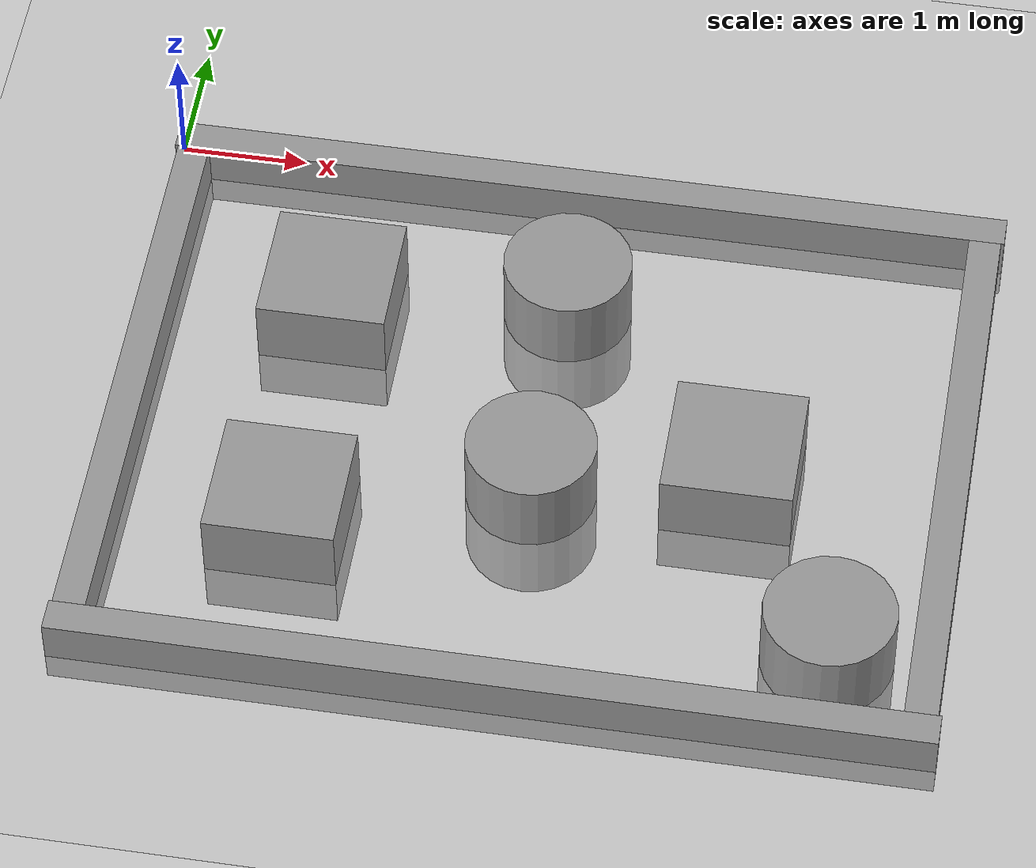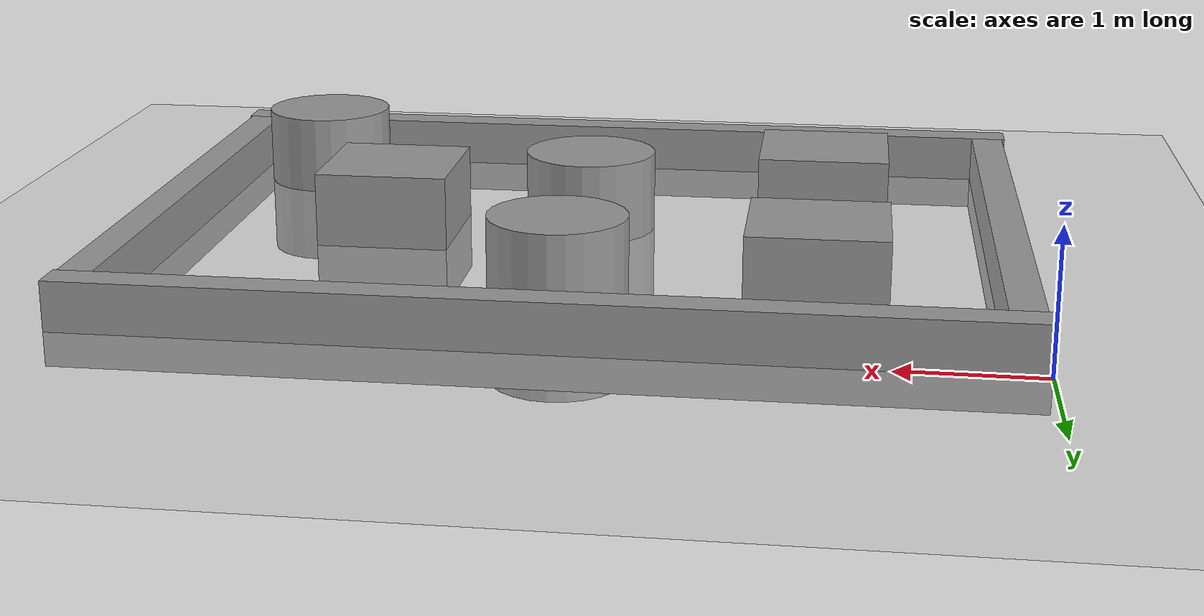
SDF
<sdf version='1.6'>
  <world name='default'>
    <light name='sun' type='directional'>
      <cast_shadows>1</cast_shadows>
      <pose frame=''>0 0 10 0 -0 0</pose>
      <diffuse>0.8 0.8 0.8 1</diffuse>
      <specular>0.2 0.2 0.2 1</specular>
      <attenuation>
        <range>1000</range>
        <constant>0.9</constant>
        <linear>0.01</linear>
        <quadratic>0.001</quadratic>
      </attenuation>
      <direction>-0.5 0.1 -0.9</direction>
    </light>
    <model name='ground_plane'>
      <static>1</static>
      <link name='link'>
        <collision name='collision'>
          <geometry>
            <plane>
              <normal>0 0 1</normal>
              <size>100 100</size>
            </plane>
          </geometry>
          <surface>
            <contact>
              <collide_bitmask>65535</collide_bitmask>
              <ode/>
            </contact>
            <friction>
              <ode>
                <mu>100</mu>
                <mu2>50</mu2>
              </ode>
              <torsional>
                <ode/>
              </torsional>
            </friction>
            <bounce/>
          </surface>
          <max_contacts>10</max_contacts>
        </collision>
        <visual name='visual'>
          <cast_shadows>0</cast_shadows>
          <geometry>
            <plane>
              <normal>0 0 1</normal>
              <size>100 100</size>
            </plane>
          </geometry>
          <material>
            <script>
              <uri>file://media/materials/scripts/gazebo.material</uri>
              <name>Gazebo/Grey</name>
            </script>
          </material>
        </visual>
        <self_collide>0</self_collide>
        <enable_wind>0</enable_wind>
        <kinematic>0</kinematic>
      </link>
    </model>
    <gravity>0 0 -9.8</gravity>
    <magnetic_field>6e-06 2.3e-05 -4.2e-05</magnetic_field>
    <atmosphere type='adiabatic'/>
    <physics name='default_physics' default='0' type='ode'>
      <max_step_size>0.001</max_step_size>
      <real_time_factor>1</real_time_factor>
      <real_time_update_rate>1000</real_time_update_rate>
    </physics>
    <scene>
      <ambient>0.4 0.4 0.4 1</ambient>
      <background>0.7 0.7 0.7 1</background>
      <shadows>1</shadows>
    </scene>
    <audio>
      <device>default</device>
    </audio>
    <wind/>
    <spherical_coordinates>
      <surface_model>EARTH_WGS84</surface_model>
      <latitude_deg>0</latitude_deg>
      <longitude_deg>0</longitude_deg>
      <elevation>0</elevation>
      <heading_deg>0</heading_deg>
    </spherical_coordinates>

    <model name='unit_box_X+'>
      <static>1</static>
      <pose frame=''>3.30 -4.95 0.05 0 -0 0</pose>
      <link name='link'>
        <inertial>
          <mass>1</mass>
          <inertia>
            <ixx>0.166667</ixx>
            <ixy>0</ixy>
            <ixz>0</ixz>
            <iyy>0.166667</iyy>
            <iyz>0</iyz>
            <izz>0.166667</izz>
          </inertia>
        </inertial>
        <collision name='collision'>
          <geometry>
            <box>
              <size>6.6 0.25 0.6</size>
            </box>
          </geometry>
          <max_contacts>10</max_contacts>
          <surface>
            <contact>
              <ode/>
            </contact>
            <bounce/>
            <friction>
              <torsional>
                <ode/>
              </torsional>
              <ode/>
            </friction>
          </surface>
        </collision>
        <visual name='visual'>
          <geometry>
            <box>
              <size>6.6 0.25 0.6</size>
            </box>
          </geometry>
          <material>
            <script>
              <name>Gazebo/Grey</name>
              <uri>file://media/materials/scripts/gazebo.material</uri>
            </script>
          </material>
        </visual>
        <self_collide>0</self_collide>
        <enable_wind>0</enable_wind>
        <kinematic>0</kinematic>
      </link>
    </model>
    <model name='unit_box_X-'>
      <static>1</static>
      <pose frame=''>3.30 -0.15 0.05 0 -0 0</pose>
      <link name='link'>
        <inertial>
          <mass>1</mass>
          <inertia>
            <ixx>0.166667</ixx>
            <ixy>0</ixy>
            <ixz>0</ixz>
            <iyy>0.166667</iyy>
            <iyz>0</iyz>
            <izz>0.166667</izz>
          </inertia>
        </inertial>
        <collision name='collision'>
          <geometry>
            <box>
              <size>6.6 0.25 0.6</size>
            </box>
          </geometry>
          <max_contacts>10</max_contacts>
          <surface>
            <contact>
              <ode/>
            </contact>
            <bounce/>
            <friction>
              <torsional>
                <ode/>
              </torsional>
              <ode/>
            </friction>
          </surface>
        </collision>
        <visual name='visual'>
          <geometry>
            <box>
              <size>6.6 0.25 0.6</size>
            </box>
          </geometry>
          <material>
            <script>
              <name>Gazebo/Grey</name>
              <uri>file://media/materials/scripts/gazebo.material</uri>
            </script>
          </material>
        </visual>
        <self_collide>0</self_collide>
        <enable_wind>0</enable_wind>
        <kinematic>0</kinematic>
      </link>
    </model>
    <model name='unit_box_Y+'>
      <static>1</static>
      <pose frame=''>6.45 -2.55 0.05 0 -0 0</pose>
      <link name='link'>
        <inertial>
          <mass>1</mass>
          <inertia>
            <ixx>0.166667</ixx>
            <ixy>0</ixy>
            <ixz>0</ixz>
            <iyy>0.166667</iyy>
            <iyz>0</iyz>
            <izz>0.166667</izz>
          </inertia>
        </inertial>
        <collision name='collision'>
          <geometry>
            <box>
              <size>0.25 4.55 0.6</size>
            </box>
          </geometry>
          <max_contacts>10</max_contacts>
          <surface>
            <contact>
              <ode/>
            </contact>
            <bounce/>
            <friction>
              <torsional>
                <ode/>
              </torsional>
              <ode/>
            </friction>
          </surface>
        </collision>
        <visual name='visual'>
          <geometry>
            <box>
              <size>0.25 4.55 0.6</size>
            </box>
          </geometry>
          <material>
            <script>
              <name>Gazebo/Grey</name>
              <uri>file://media/materials/scripts/gazebo.material</uri>
            </script>
          </material>
        </visual>
        <self_collide>0</self_collide>
        <enable_wind>0</enable_wind>
        <kinematic>0</kinematic>
      </link>
    </model>
    <model name='unit_box_Y-'>
      <static>1</static>
      <pose frame=''>0.15 -2.55 0.05 0 -0 0</pose>
      <link name='link'>
        <inertial>
          <mass>1</mass>
          <inertia>
            <ixx>0.166667</ixx>
            <ixy>0</ixy>
            <ixz>0</ixz>
            <iyy>0.166667</iyy>
            <iyz>0</iyz>
            <izz>0.166667</izz>
          </inertia>
        </inertial>
        <collision name='collision'>
          <geometry>
            <box>
              <size>0.25 4.55 0.6</size>
            </box>
          </geometry>
          <max_contacts>10</max_contacts>
          <surface>
            <contact>
              <ode/>
            </contact>
            <bounce/>
            <friction>
              <torsional>
                <ode/>
              </torsional>
              <ode/>
            </friction>
          </surface>
        </collision>
        <visual name='visual'>
          <geometry>
            <box>
              <size>0.25 4.55 0.6</size>
            </box>
          </geometry>
          <material>
            <script>
              <name>Gazebo/Grey</name>
              <uri>file://media/materials/scripts/gazebo.material</uri>
            </script>
          </material>
        </visual>
        <self_collide>0</self_collide>
        <enable_wind>0</enable_wind>
        <kinematic>0</kinematic>
      </link>
    </model>
    <gui fullscreen='0'>
      <camera name='user_camera'>
        <pose frame=''>3.49145 -4.60668 12.7015 0 1.15164 2.01219</pose>
        <view_controller>orbit</view_controller>
        <projection_type>perspective</projection_type>
      </camera>
    </gui>
    <model name='cube_obstacle_1'>
      <static>1</static>
      <pose frame=''>1.50 -1.50 0.05 0 -0 0</pose>
      <link name='link'>
        <inertial>
          <mass>1</mass>
          <inertia>
            <ixx>0.166667</ixx>
            <ixy>0</ixy>
            <ixz>0</ixz>
            <iyy>0.166667</iyy>
            <iyz>0</iyz>
            <izz>0.166667</izz>
          </inertia>
        </inertial>
        <collision name='collision'>
          <geometry>
            <box>
              <size>1.0 1.0 1.0</size>
            </box>
          </geometry>
          <max_contacts>10</max_contacts>
          <surface>
            <contact>
              <ode/>
            </contact>
            <bounce/>
            <friction>
              <torsional>
                <ode/>
              </torsional>
              <ode/>
            </friction>
          </surface>
        </collision>
        <visual name='visual'>
          <geometry>
            <box>
              <size>1.0 1.0 1.0</size>
            </box>
          </geometry>
          <material>
            <script>
              <name>Gazebo/Grey</name>
              <uri>file://media/materials/scripts/gazebo.material</uri>
            </script>
          </material>
        </visual>
        <self_collide>0</self_collide>
        <enable_wind>0</enable_wind>
        <kinematic>0</kinematic>
      </link>
    </model>
    <model name='cube_obstacle_2'>
      <static>1</static>
      <pose frame=''>1.50 -3.60 0.05 0 0 0</pose>
      <link name='link'>
        <inertial>
          <mass>1</mass>
          <inertia>
            <ixx>0.166667</ixx>
            <ixy>0</ixy>
            <ixz>0</ixz>
            <iyy>0.166667</iyy>
            <iyz>0</iyz>
            <izz>0.166667</izz>
          </inertia>
        </inertial>
        <collision name='collision'>
          <geometry>
            <box>
              <size>1.0 1.0 1.0</size>
            </box>
          </geometry>
          <max_contacts>10</max_contacts>
          <surface>
            <contact>
              <ode/>
            </contact>
            <bounce/>
            <friction>
              <torsional>
                <ode/>
              </torsional>
              <ode/>
            </friction>
          </surface>
        </collision>
        <visual name='visual'>
          <geometry>
            <box>
              <size>1.0 1.0 1.0</size>
            </box>
          </geometry>
          <material>
            <script>
              <name>Gazebo/Grey</name>
              <uri>file://media/materials/scripts/gazebo.material</uri>
            </script>
          </material>
        </visual>
        <self_collide>0</self_collide>
        <enable_wind>0</enable_wind>
        <kinematic>0</kinematic>
      </link>
    </model>
    <model name='cube_obstacle_3'>
      <static>1</static>
      <pose frame=''>4.80 -2.70 0.05 0 0 0</pose>
      <link name='link'>
        <inertial>
          <mass>1</mass>
          <inertia>
            <ixx>0.166667</ixx>
            <ixy>0</ixy>
            <ixz>0</ixz>
            <iyy>0.166667</iyy>
            <iyz>0</iyz>
            <izz>0.166667</izz>
          </inertia>
        </inertial>
        <collision name='collision'>
          <geometry>
            <box>
              <size>1.0 1.0 1.0</size>
            </box>
          </geometry>
          <max_contacts>10</max_contacts>
          <surface>
            <contact>
              <ode/>
            </contact>
            <bounce/>
            <friction>
              <torsional>
                <ode/>
              </torsional>
              <ode/>
            </friction>
          </surface>
        </collision>
        <visual name='visual'>
          <geometry>
            <box>
              <size>1.0 1.0 1.0</size>
            </box>
          </geometry>
          <material>
            <script>
              <name>Gazebo/Grey</name>
              <uri>file://media/materials/scripts/gazebo.material</uri>
            </script>
          </material>
        </visual>
        <self_collide>0</self_collide>
        <enable_wind>0</enable_wind>
        <kinematic>0</kinematic>
      </link>
    </model>
    <model name='cylinder_obstacle_1'>
      <static>1</static>
      <pose frame=''>3.3 -3.0 0.0 0 -0 0</pose>
      <link name='link'>
        <inertial>
          <mass>1</mass>
          <inertia>
            <ixx>0.145833</ixx>
            <ixy>0</ixy>
            <ixz>0</ixz>
            <iyy>0.145833</iyy>
            <iyz>0</iyz>
            <izz>0.125</izz>
          </inertia>
        </inertial>
        <collision name='collision'>
          <geometry>
            <cylinder>
              <radius>0.5</radius>
              <length>1.2</length>
            </cylinder>
          </geometry>
          <max_contacts>10</max_contacts>
          <surface>
            <contact>
              <ode/>
            </contact>
            <bounce/>
            <friction>
              <torsional>
                <ode/>
              </torsional>
              <ode/>
            </friction>
          </surface>
        </collision>
        <visual name='visual'>
          <geometry>
            <cylinder>
              <radius>0.5</radius>
              <length>1.2</length>
            </cylinder>
          </geometry>
          <material>
            <script>
              <name>Gazebo/Grey</name>
              <uri>file://media/materials/scripts/gazebo.material</uri>
            </script>
          </material>
        </visual>
        <self_collide>0</self_collide>
        <enable_wind>0</enable_wind>
        <kinematic>0</kinematic>
      </link>
    </model>
    <model name='cylinder_obstacle_2'>
      <static>1</static>
      <pose frame=''>3.3 -1.2 0.0 0 -0 0</pose>
      <link name='link'>
        <inertial>
          <mass>1</mass>
          <inertia>
            <ixx>0.145833</ixx>
            <ixy>0</ixy>
            <ixz>0</ixz>
            <iyy>0.145833</iyy>
            <iyz>0</iyz>
            <izz>0.125</izz>
          </inertia>
        </inertial>
        <collision name='collision'>
          <geometry>
            <cylinder>
              <radius>0.5</radius>
              <length>1.2</length>
            </cylinder>
          </geometry>
          <max_contacts>10</max_contacts>
          <surface>
            <contact>
              <ode/>
            </contact>
            <bounce/>
            <friction>
              <torsional>
                <ode/>
              </torsional>
              <ode/>
            </friction>
          </surface>
        </collision>
        <visual name='visual'>
          <geometry>
            <cylinder>
              <radius>0.5</radius>
              <length>1.2</length>
            </cylinder>
          </geometry>
          <material>
            <script>
              <name>Gazebo/Grey</name>
              <uri>file://media/materials/scripts/gazebo.material</uri>
            </script>
          </material>
        </visual>
        <self_collide>0</self_collide>
        <enable_wind>0</enable_wind>
        <kinematic>0</kinematic>
      </link>
    </model>
    <model name='cylinder_obstacle_3'>
      <static>1</static>
      <pose frame=''>5.7 -4.2 0.0 0 -0 0</pose>
      <link name='link'>
        <inertial>
          <mass>1</mass>
          <inertia>
            <ixx>0.145833</ixx>
            <ixy>0</ixy>
            <ixz>0</ixz>
            <iyy>0.145833</iyy>
            <iyz>0</iyz>
            <izz>0.125</izz>
          </inertia>
        </inertial>
        <collision name='collision'>
          <geometry>
            <cylinder>
              <radius>0.5</radius>
              <length>1.2</length>
            </cylinder>
          </geometry>
          <max_contacts>10</max_contacts>
          <surface>
            <contact>
              <ode/>
            </contact>
            <bounce/>
            <friction>
              <torsional>
                <ode/>
              </torsional>
              <ode/>
            </friction>
          </surface>
        </collision>
        <visual name='visual'>
          <geometry>
            <cylinder>
              <radius>0.5</radius>
              <length>1.2</length>
            </cylinder>
          </geometry>
          <material>
            <script>
              <name>Gazebo/Grey</name>
              <uri>file://media/materials/scripts/gazebo.material</uri>
            </script>
          </material>
        </visual>
        <self_collide>0</self_collide>
        <enable_wind>0</enable_wind>
        <kinematic>0</kinematic>
      </link>
    </model>
  </world>
</sdf>
